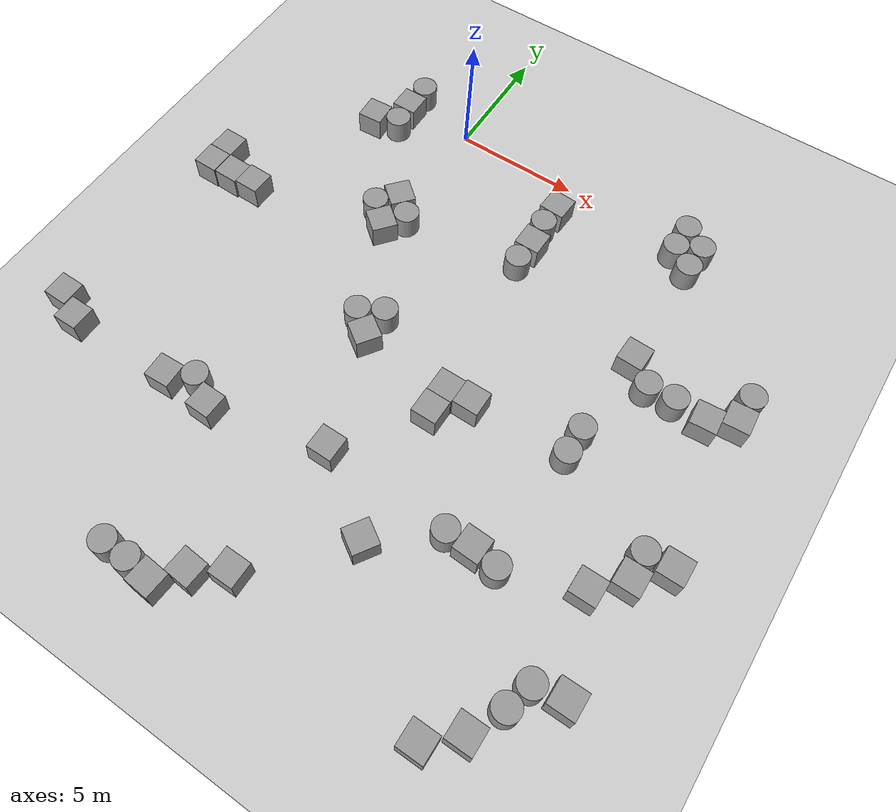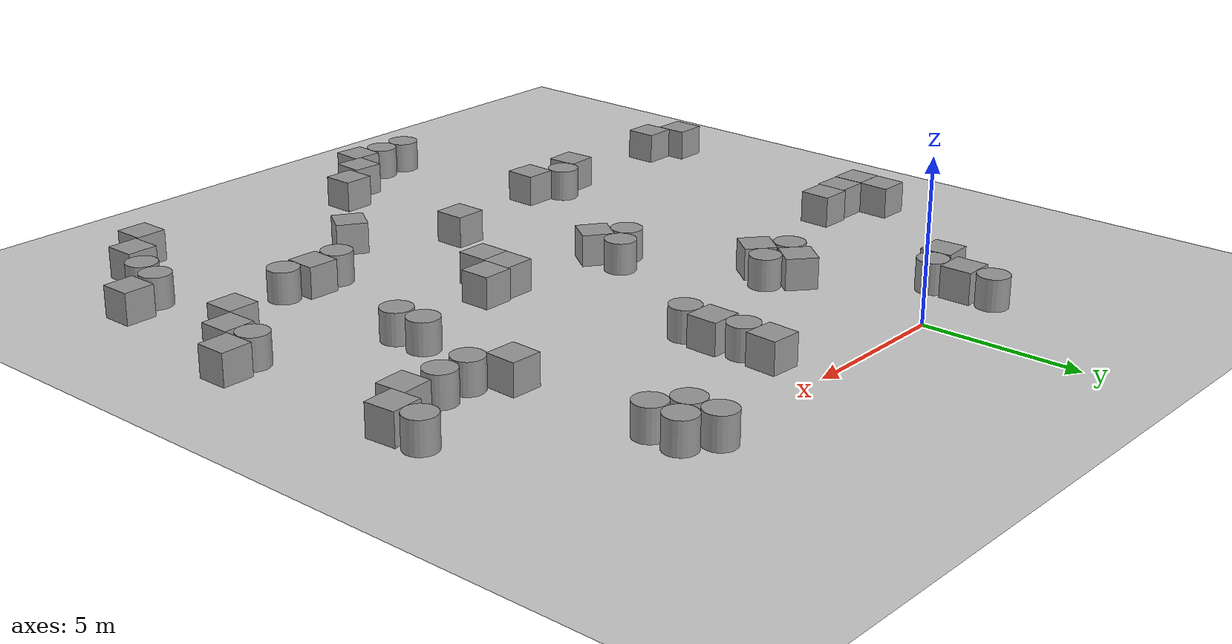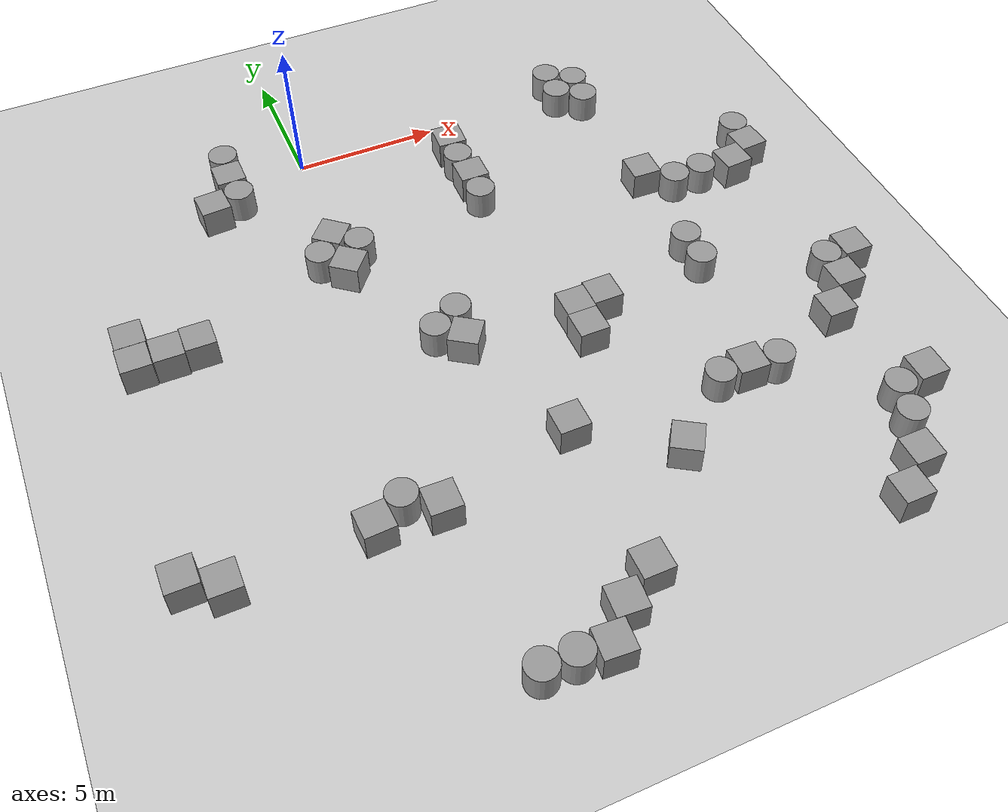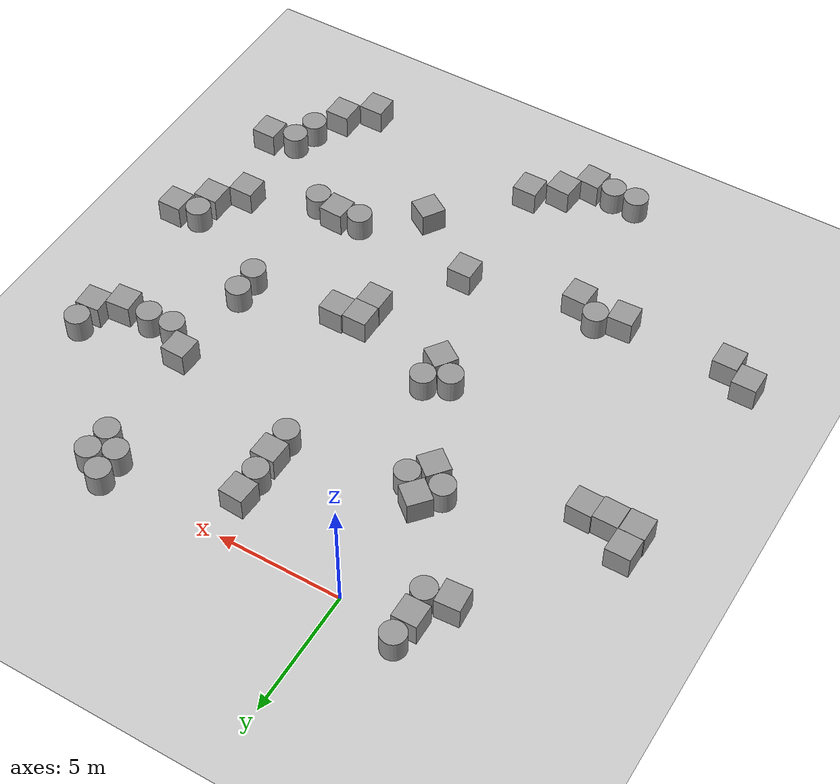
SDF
<sdf version="1.6">
 <world name="default">
  <model name="ground_plane">
   <static>1</static>
   <link name="link">
    <collision name="collision">
     <geometry><plane><normal>0 0 1</normal><size>100 100</size></plane></geometry>
     <surface><friction><ode><mu>100</mu><mu2>50</mu2></ode></friction></surface>
    </collision>
    <visual name="visual">
     <cast_shadows>0</cast_shadows>
     <geometry><plane><normal>0 0 1</normal><size>100 100</size></plane></geometry>
     <material>
      <script><uri>file://media/materials/scripts/gazebo.material</uri><name>Gazebo/Grey</name></script>
     </material>
    </visual>
   </link>
  </model>
  <model name="unit_box_5">
   <pose>-6.52677 -7.31553 0.5 0 0 -0.01529</pose>
   <link name="link">
    <inertial>
     <mass>1</mass>
     <inertia>
      <ixx>0.166667</ixx>
      <ixy>0</ixy>
      <ixz>0</ixz>
      <iyy>0.166667</iyy>
      <iyz>0</iyz>
      <izz>0.166667</izz>
     </inertia>
    </inertial>
    <collision name="collision"><geometry><box><size>1 1 1</size></box></geometry></collision>
    <visual name="visual">
     <geometry><box><size>1 1 1</size></box></geometry>
     <material>
      <script><name>Gazebo/Grey</name><uri>file://media/materials/scripts/gazebo.material</uri></script>
     </material>
    </visual>
   </link>
  </model>
  <model name="unit_cylinder_0">
   <pose>10.7483 -0.233952 0.499942 0 -0 0.018874</pose>
   <link name="link">
    <inertial>
     <mass>1</mass>
     <inertia><ixx>0.145833</ixx><ixy>0</ixy><ixz>0</ixz><iyy>0.145833</iyy><iyz>0</iyz><izz>0.125</izz></inertia>
    </inertial>
    <collision name="collision">
     <geometry><cylinder><radius>0.5</radius><length>1</length></cylinder></geometry>
    </collision>
    <visual name="visual">
     <geometry><cylinder><radius>0.5</radius><length>1</length></cylinder></geometry>
     <material>
      <script><name>Gazebo/Grey</name><uri>file://media/materials/scripts/gazebo.material</uri></script>
     </material>
    </visual>
   </link>
  </model>
  <model name="unit_cylinder_1">
   <pose>10.5673 -10.4506 0.499942 0 0 -0.000248</pose>
   <link name="link">
    <inertial>
     <mass>1</mass>
     <inertia><ixx>0.145833</ixx><ixy>0</ixy><ixz>0</ixz><iyy>0.145833</iyy><iyz>0</iyz><izz>0.125</izz></inertia>
    </inertial>
    <collision name="collision">
     <geometry><cylinder><radius>0.5</radius><length>1</length></cylinder></geometry>
    </collision>
    <visual name="visual">
     <geometry><cylinder><radius>0.5</radius><length>1</length></cylinder></geometry>
     <material>
      <script><name>Gazebo/Grey</name><uri>file://media/materials/scripts/gazebo.material</uri></script>
     </material>
    </visual>
   </link>
  </model>
  <model name="unit_cylinder_2">
   <pose>10.5614 -9.39908 0.499942 0 0 -0.000915</pose>
   <link name="link">
    <inertial>
     <mass>1</mass>
     <inertia><ixx>0.145833</ixx><ixy>0</ixy><ixz>0</ixz><iyy>0.145833</iyy><iyz>0</iyz><izz>0.125</izz></inertia>
    </inertial>
    <collision name="collision">
     <geometry><cylinder><radius>0.5</radius><length>1</length></cylinder></geometry>
    </collision>
    <visual name="visual">
     <geometry><cylinder><radius>0.5</radius><length>1</length></cylinder></geometry>
     <material>
      <script><name>Gazebo/Grey</name><uri>file://media/materials/scripts/gazebo.material</uri></script>
     </material>
    </visual>
   </link>
  </model>
  <model name="unit_cylinder_3">
   <pose>10.6757 -1.26585 0.499942 0 -0 0.000199</pose>
   <link name="link">
    <inertial>
     <mass>1</mass>
     <inertia><ixx>0.145833</ixx><ixy>0</ixy><ixz>0</ixz><iyy>0.145833</iyy><iyz>0</iyz><izz>0.125</izz></inertia>
    </inertial>
    <collision name="collision">
     <geometry><cylinder><radius>0.5</radius><length>1</length></cylinder></geometry>
    </collision>
    <visual name="visual">
     <geometry><cylinder><radius>0.5</radius><length>1</length></cylinder></geometry>
     <material>
      <script><name>Gazebo/Grey</name><uri>file://media/materials/scripts/gazebo.material</uri></script>
     </material>
    </visual>
   </link>
  </model>
  <model name="unit_cylinder_6">
   <pose>-2.57686 0.723564 0.499942 0 0 -0.000453</pose>
   <link name="link">
    <inertial>
     <mass>1</mass>
     <inertia><ixx>0.145833</ixx><ixy>0</ixy><ixz>0</ixz><iyy>0.145833</iyy><iyz>0</iyz><izz>0.125</izz></inertia>
    </inertial>
    <collision name="collision">
     <geometry><cylinder><radius>0.5</radius><length>1</length></cylinder></geometry>
    </collision>
    <visual name="visual">
     <geometry><cylinder><radius>0.5</radius><length>1</length></cylinder></geometry>
     <material>
      <script><name>Gazebo/Grey</name><uri>file://media/materials/scripts/gazebo.material</uri></script>
     </material>
    </visual>
   </link>
  </model>
  <model name="unit_cylinder_7">
   <pose>1.38178 -9.82712 0.499942 0 0 -0.019752</pose>
   <link name="link">
    <inertial>
     <mass>1</mass>
     <inertia><ixx>0.145833</ixx><ixy>0</ixy><ixz>0</ixz><iyy>0.145833</iyy><iyz>0</iyz><izz>0.125</izz></inertia>
    </inertial>
    <collision name="collision">
     <geometry><cylinder><radius>0.5</radius><length>1</length></cylinder></geometry>
    </collision>
    <visual name="visual">
     <geometry><cylinder><radius>0.5</radius><length>1</length></cylinder></geometry>
     <material>
      <script><name>Gazebo/Grey</name><uri>file://media/materials/scripts/gazebo.material</uri></script>
     </material>
    </visual>
   </link>
  </model>
  <model name="unit_box_10">
   <pose>6.83774 -10.6024 0.5 0 0 -2.4e-05</pose>
   <link name="link">
    <inertial>
     <mass>1</mass>
     <inertia>
      <ixx>0.166667</ixx>
      <ixy>0</ixy>
      <ixz>0</ixz>
      <iyy>0.166667</iyy>
      <iyz>0</iyz>
      <izz>0.166667</izz>
     </inertia>
    </inertial>
    <collision name="collision"><geometry><box><size>1 1 1</size></box></geometry></collision>
    <visual name="visual">
     <geometry><box><size>1 1 1</size></box></geometry>
     <material>
      <script><name>Gazebo/Grey</name><uri>file://media/materials/scripts/gazebo.material</uri></script>
     </material>
    </visual>
   </link>
  </model>
  <model name="unit_box_11">
   <pose>5.82225 -11.6823 0.5 0 0 -3.2e-05</pose>
   <link name="link">
    <inertial>
     <mass>1</mass>
     <inertia>
      <ixx>0.166667</ixx>
      <ixy>0</ixy>
      <ixz>0</ixz>
      <iyy>0.166667</iyy>
      <iyz>0</iyz>
      <izz>0.166667</izz>
     </inertia>
    </inertial>
    <collision name="collision"><geometry><box><size>1 1 1</size></box></geometry></collision>
    <visual name="visual">
     <geometry><box><size>1 1 1</size></box></geometry>
     <material>
      <script><name>Gazebo/Grey</name><uri>file://media/materials/scripts/gazebo.material</uri></script>
     </material>
    </visual>
   </link>
  </model>
  <model name="unit_box_12">
   <pose>5.15723 -1.54455 0.5 0 0 -0.056775</pose>
   <link name="link">
    <inertial>
     <mass>1</mass>
     <inertia>
      <ixx>0.166667</ixx>
      <ixy>0</ixy>
      <ixz>0</ixz>
      <iyy>0.166667</iyy>
      <iyz>0</iyz>
      <izz>0.166667</izz>
     </inertia>
    </inertial>
    <collision name="collision"><geometry><box><size>1 1 1</size></box></geometry></collision>
    <visual name="visual">
     <geometry><box><size>1 1 1</size></box></geometry>
     <material>
      <script><name>Gazebo/Grey</name><uri>file://media/materials/scripts/gazebo.material</uri></script>
     </material>
    </visual>
   </link>
  </model>
  <model name="unit_cylinder_8_1">
   <pose>5.09818 -2.54286 0.499942 0 0 -0.000545</pose>
   <link name="link">
    <inertial>
     <mass>1</mass>
     <inertia><ixx>0.145833</ixx><ixy>0</ixy><ixz>0</ixz><iyy>0.145833</iyy><iyz>0</iyz><izz>0.125</izz></inertia>
    </inertial>
    <collision name="collision">
     <geometry><cylinder><radius>0.5</radius><length>1</length></cylinder></geometry>
    </collision>
    <visual name="visual">
     <geometry><cylinder><radius>0.5</radius><length>1</length></cylinder></geometry>
     <material>
      <script><name>Gazebo/Grey</name><uri>file://media/materials/scripts/gazebo.material</uri></script>
     </material>
    </visual>
   </link>
  </model>
  <model name="unit_box_13">
   <pose>5.186 -3.54449 0.5 0 0 -0.016738</pose>
   <link name="link">
    <inertial>
     <mass>1</mass>
     <inertia>
      <ixx>0.166667</ixx>
      <ixy>0</ixy>
      <ixz>0</ixz>
      <iyy>0.166667</iyy>
      <iyz>0</iyz>
      <izz>0.166667</izz>
     </inertia>
    </inertial>
    <collision name="collision"><geometry><box><size>1 1 1</size></box></geometry></collision>
    <visual name="visual">
     <geometry><box><size>1 1 1</size></box></geometry>
     <material>
      <script><name>Gazebo/Grey</name><uri>file://media/materials/scripts/gazebo.material</uri></script>
     </material>
    </visual>
   </link>
  </model>
  <model name="unit_cylinder_8_2">
   <pose>5.13166 -4.54376 0.499942 0 0 -0.00034</pose>
   <link name="link">
    <inertial>
     <mass>1</mass>
     <inertia><ixx>0.145833</ixx><ixy>0</ixy><ixz>0</ixz><iyy>0.145833</iyy><iyz>0</iyz><izz>0.125</izz></inertia>
    </inertial>
    <collision name="collision">
     <geometry><cylinder><radius>0.5</radius><length>1</length></cylinder></geometry>
    </collision>
    <visual name="visual">
     <geometry><cylinder><radius>0.5</radius><length>1</length></cylinder></geometry>
     <material>
      <script><name>Gazebo/Grey</name><uri>file://media/materials/scripts/gazebo.material</uri></script>
     </material>
    </visual>
   </link>
  </model>
  <model name="unit_box_14">
   <pose>5.83773 -10.6822 0.5 0 0 -2.8e-05</pose>
   <link name="link">
    <inertial>
     <mass>1</mass>
     <inertia>
      <ixx>0.166667</ixx>
      <ixy>0</ixy>
      <ixz>0</ixz>
      <iyy>0.166667</iyy>
      <iyz>0</iyz>
      <izz>0.166667</izz>
     </inertia>
    </inertial>
    <collision name="collision"><geometry><box><size>1 1 1</size></box></geometry></collision>
    <visual name="visual">
     <geometry><box><size>1 1 1</size></box></geometry>
     <material>
      <script><name>Gazebo/Grey</name><uri>file://media/materials/scripts/gazebo.material</uri></script>
     </material>
    </visual>
   </link>
  </model>
  <model name="unit_cylinder_14">
   <pose>14.9355 -5.05121 0.499942 0 -0 0.002226</pose>
   <link name="link">
    <inertial>
     <mass>1</mass>
     <inertia><ixx>0.145833</ixx><ixy>0</ixy><ixz>0</ixz><iyy>0.145833</iyy><iyz>0</iyz><izz>0.125</izz></inertia>
    </inertial>
    <collision name="collision">
     <geometry><cylinder><radius>0.5</radius><length>1</length></cylinder></geometry>
    </collision>
    <visual name="visual">
     <geometry><cylinder><radius>0.5</radius><length>1</length></cylinder></geometry>
     <material>
      <script><name>Gazebo/Grey</name><uri>file://media/materials/scripts/gazebo.material</uri></script>
     </material>
    </visual>
   </link>
  </model>
  <model name="unit_box_25">
   <pose>13.9445 -6.67344 0.5 0 -0 0.075178</pose>
   <link name="link">
    <inertial>
     <mass>1</mass>
     <inertia>
      <ixx>0.166667</ixx>
      <ixy>0</ixy>
      <ixz>0</ixz>
      <iyy>0.166667</iyy>
      <iyz>0</iyz>
      <izz>0.166667</izz>
     </inertia>
    </inertial>
    <collision name="collision"><geometry><box><size>1 1 1</size></box></geometry></collision>
    <visual name="visual">
     <geometry><box><size>1 1 1</size></box></geometry>
     <material>
      <script><name>Gazebo/Grey</name><uri>file://media/materials/scripts/gazebo.material</uri></script>
     </material>
    </visual>
   </link>
  </model>
  <model name="unit_box_26">
   <pose>3.65039 -14.8069 0.5 0 -0 0</pose>
   <link name="link">
    <inertial>
     <mass>1</mass>
     <inertia>
      <ixx>0.166667</ixx>
      <ixy>0</ixy>
      <ixz>0</ixz>
      <iyy>0.166667</iyy>
      <iyz>0</iyz>
      <izz>0.166667</izz>
     </inertia>
    </inertial>
    <collision name="collision"><geometry><box><size>1 1 1</size></box></geometry></collision>
    <visual name="visual">
     <geometry><box><size>1 1 1</size></box></geometry>
     <material>
      <script><name>Gazebo/Grey</name><uri>file://media/materials/scripts/gazebo.material</uri></script>
     </material>
    </visual>
   </link>
  </model>
  <model name="unit_cylinder_15">
   <pose>-1.77956 -15.2792 0.499942 0 0 -0.00561</pose>
   <link name="link">
    <inertial>
     <mass>1</mass>
     <inertia><ixx>0.145833</ixx><ixy>0</ixy><ixz>0</ixz><iyy>0.145833</iyy><iyz>0</iyz><izz>0.125</izz></inertia>
    </inertial>
    <collision name="collision">
     <geometry><cylinder><radius>0.5</radius><length>1</length></cylinder></geometry>
    </collision>
    <visual name="visual">
     <geometry><cylinder><radius>0.5</radius><length>1</length></cylinder></geometry>
     <material>
      <script><name>Gazebo/Grey</name><uri>file://media/materials/scripts/gazebo.material</uri></script>
     </material>
    </visual>
   </link>
  </model>
  <model name="unit_box_27">
   <pose>-7.07555 -15.8653 0.5 0 -0 0</pose>
   <link name="link">
    <inertial>
     <mass>1</mass>
     <inertia>
      <ixx>0.166667</ixx>
      <ixy>0</ixy>
      <ixz>0</ixz>
      <iyy>0.166667</iyy>
      <iyz>0</iyz>
      <izz>0.166667</izz>
     </inertia>
    </inertial>
    <collision name="collision"><geometry><box><size>1 1 1</size></box></geometry></collision>
    <visual name="visual">
     <geometry><box><size>1 1 1</size></box></geometry>
     <material>
      <script><name>Gazebo/Grey</name><uri>file://media/materials/scripts/gazebo.material</uri></script>
     </material>
    </visual>
   </link>
  </model>
  <model name="unit_box_35">
   <pose>14.9026 -6.05619 0.5 0 -0 0.071763</pose>
   <link name="link">
    <inertial>
     <mass>1</mass>
     <inertia>
      <ixx>0.166667</ixx>
      <ixy>0</ixy>
      <ixz>0</ixz>
      <iyy>0.166667</iyy>
      <iyz>0</iyz>
      <izz>0.166667</izz>
     </inertia>
    </inertial>
    <collision name="collision"><geometry><box><size>1 1 1</size></box></geometry></collision>
    <visual name="visual">
     <geometry><box><size>1 1 1</size></box></geometry>
     <material>
      <script><name>Gazebo/Grey</name><uri>file://media/materials/scripts/gazebo.material</uri></script>
     </material>
    </visual>
   </link>
  </model>
  <model name="unit_box_24_2">
   <pose>-8.1048 -15.29 0.5 0 0 -6e-06</pose>
   <link name="link">
    <inertial>
     <mass>1</mass>
     <inertia>
      <ixx>0.166667</ixx>
      <ixy>0</ixy>
      <ixz>0</ixz>
      <iyy>0.166667</iyy>
      <iyz>0</iyz>
      <izz>0.166667</izz>
     </inertia>
    </inertial>
    <collision name="collision"><geometry><box><size>1 1 1</size></box></geometry></collision>
    <visual name="visual">
     <geometry><box><size>1 1 1</size></box></geometry>
     <material>
      <script><name>Gazebo/Grey</name><uri>file://media/materials/scripts/gazebo.material</uri></script>
     </material>
    </visual>
   </link>
  </model>
  <model name="unit_cylinder_34">
   <pose>-2.55708 -1.29983 0.499942 0 0 -0.031644</pose>
   <link name="link">
    <inertial>
     <mass>1</mass>
     <inertia><ixx>0.145833</ixx><ixy>0</ixy><ixz>0</ixz><iyy>0.145833</iyy><iyz>0</iyz><izz>0.125</izz></inertia>
    </inertial>
    <collision name="collision">
     <geometry><cylinder><radius>0.5</radius><length>1</length></cylinder></geometry>
    </collision>
    <visual name="visual">
     <geometry><cylinder><radius>0.5</radius><length>1</length></cylinder></geometry>
     <material>
      <script><name>Gazebo/Grey</name><uri>file://media/materials/scripts/gazebo.material</uri></script>
     </material>
    </visual>
   </link>
  </model>
  <model name="unit_cylinder_40">
   <pose>8.62202 -15.0706 0.499942 0 0 -0.007938</pose>
   <link name="link">
    <inertial>
     <mass>1</mass>
     <inertia><ixx>0.145833</ixx><ixy>0</ixy><ixz>0</ixz><iyy>0.145833</iyy><iyz>0</iyz><izz>0.125</izz></inertia>
    </inertial>
    <collision name="collision">
     <geometry><cylinder><radius>0.5</radius><length>1</length></cylinder></geometry>
    </collision>
    <visual name="visual">
     <geometry><cylinder><radius>0.5</radius><length>1</length></cylinder></geometry>
     <material>
      <script><name>Gazebo/Grey</name><uri>file://media/materials/scripts/gazebo.material</uri></script>
     </material>
    </visual>
   </link>
  </model>
  <model name="unit_box_45">
   <pose>9.62543 -15.0067 0.5 0 0 -0.03885</pose>
   <link name="link">
    <inertial>
     <mass>1</mass>
     <inertia>
      <ixx>0.166667</ixx>
      <ixy>0</ixy>
      <ixz>0</ixz>
      <iyy>0.166667</iyy>
      <iyz>0</iyz>
      <izz>0.166667</izz>
     </inertia>
    </inertial>
    <collision name="collision"><geometry><box><size>1 1 1</size></box></geometry></collision>
    <visual name="visual">
     <geometry><box><size>1 1 1</size></box></geometry>
     <material>
      <script><name>Gazebo/Grey</name><uri>file://media/materials/scripts/gazebo.material</uri></script>
     </material>
    </visual>
   </link>
  </model>
  <model name="unit_cylinder_41">
   <pose>10.6198 -15.1733 0.499942 0 -0 0.015652</pose>
   <link name="link">
    <inertial>
     <mass>1</mass>
     <inertia><ixx>0.145833</ixx><ixy>0</ixy><ixz>0</ixz><iyy>0.145833</iyy><iyz>0</iyz><izz>0.125</izz></inertia>
    </inertial>
    <collision name="collision">
     <geometry><cylinder><radius>0.5</radius><length>1</length></cylinder></geometry>
    </collision>
    <visual name="visual">
     <geometry><cylinder><radius>0.5</radius><length>1</length></cylinder></geometry>
     <material>
      <script><name>Gazebo/Grey</name><uri>file://media/materials/scripts/gazebo.material</uri></script>
     </material>
    </visual>
   </link>
  </model>
  <model name="unit_box_36_0">
   <pose>15.3504 -12.0188 0.5 0 -0 0</pose>
   <link name="link">
    <inertial>
     <mass>1</mass>
     <inertia>
      <ixx>0.166667</ixx>
      <ixy>0</ixy>
      <ixz>0</ixz>
      <iyy>0.166667</iyy>
      <iyz>0</iyz>
      <izz>0.166667</izz>
     </inertia>
    </inertial>
    <collision name="collision"><geometry><box><size>1 1 1</size></box></geometry></collision>
    <visual name="visual">
     <geometry><box><size>1 1 1</size></box></geometry>
     <material>
      <script><name>Gazebo/Grey</name><uri>file://media/materials/scripts/gazebo.material</uri></script>
     </material>
    </visual>
   </link>
  </model>
  <model name="unit_cylinder_21">
   <pose>2.27126 -9.3211 0.499942 0 -0 0.010871</pose>
   <link name="link">
    <inertial>
     <mass>1</mass>
     <inertia><ixx>0.145833</ixx><ixy>0</ixy><ixz>0</ixz><iyy>0.145833</iyy><iyz>0</iyz><izz>0.125</izz></inertia>
    </inertial>
    <collision name="collision">
     <geometry><cylinder><radius>0.5</radius><length>1</length></cylinder></geometry>
    </collision>
    <visual name="visual">
     <geometry><cylinder><radius>0.5</radius><length>1</length></cylinder></geometry>
     <material>
      <script><name>Gazebo/Grey</name><uri>file://media/materials/scripts/gazebo.material</uri></script>
     </material>
    </visual>
   </link>
  </model>
  <model name="unit_box_0_1">
   <pose>-5.52497 -7.25658 0.5 0 0 -0.013465</pose>
   <link name="link">
    <inertial>
     <mass>1</mass>
     <inertia>
      <ixx>0.166667</ixx>
      <ixy>0</ixy>
      <ixz>0</ixz>
      <iyy>0.166667</iyy>
      <iyz>0</iyz>
      <izz>0.166667</izz>
     </inertia>
    </inertial>
    <collision name="collision"><geometry><box><size>1 1 1</size></box></geometry></collision>
    <visual name="visual">
     <geometry><box><size>1 1 1</size></box></geometry>
     <material>
      <script><name>Gazebo/Grey</name><uri>file://media/materials/scripts/gazebo.material</uri></script>
     </material>
    </visual>
   </link>
  </model>
  <model name="unit_box_0_2">
   <pose>-7.54927 -7.33375 0.5 0 0 -0.003969</pose>
   <link name="link">
    <inertial>
     <mass>1</mass>
     <inertia>
      <ixx>0.166667</ixx>
      <ixy>0</ixy>
      <ixz>0</ixz>
      <iyy>0.166667</iyy>
      <iyz>0</iyz>
      <izz>0.166667</izz>
     </inertia>
    </inertial>
    <collision name="collision"><geometry><box><size>1 1 1</size></box></geometry></collision>
    <visual name="visual">
     <geometry><box><size>1 1 1</size></box></geometry>
     <material>
      <script><name>Gazebo/Grey</name><uri>file://media/materials/scripts/gazebo.material</uri></script>
     </material>
    </visual>
   </link>
  </model>
  <model name="unit_box_0_3">
   <pose>-7.51431 -6.33074 0.5 0 0 -0.010331</pose>
   <link name="link">
    <inertial>
     <mass>1</mass>
     <inertia>
      <ixx>0.166667</ixx>
      <ixy>0</ixy>
      <ixz>0</ixz>
      <iyy>0.166667</iyy>
      <iyz>0</iyz>
      <izz>0.166667</izz>
     </inertia>
    </inertial>
    <collision name="collision"><geometry><box><size>1 1 1</size></box></geometry></collision>
    <visual name="visual">
     <geometry><box><size>1 1 1</size></box></geometry>
     <material>
      <script><name>Gazebo/Grey</name><uri>file://media/materials/scripts/gazebo.material</uri></script>
     </material>
    </visual>
   </link>
  </model>
  <model name="unit_box_6">
   <pose>6.49356 -16.8377 0.5 0 -0 1</pose>
   <link name="link">
    <inertial>
     <mass>1</mass>
     <inertia>
      <ixx>0.166667</ixx>
      <ixy>0</ixy>
      <ixz>0</ixz>
      <iyy>0.166667</iyy>
      <iyz>0</iyz>
      <izz>0.166667</izz>
     </inertia>
    </inertial>
    <collision name="collision"><geometry><box><size>1 1 1</size></box></geometry></collision>
    <visual name="visual">
     <geometry><box><size>1 1 1</size></box></geometry>
     <material>
      <script><name>Gazebo/Grey</name><uri>file://media/materials/scripts/gazebo.material</uri></script>
     </material>
    </visual>
   </link>
  </model>
  <model name="unit_box_18">
   <pose>-0.174864 -5.99582 0.5 0 -0 0.888889</pose>
   <link name="link">
    <inertial>
     <mass>1</mass>
     <inertia>
      <ixx>0.166667</ixx>
      <ixy>0</ixy>
      <ixz>0</ixz>
      <iyy>0.166667</iyy>
      <iyz>0</iyz>
      <izz>0.166667</izz>
     </inertia>
    </inertial>
    <collision name="collision"><geometry><box><size>1 1 1</size></box></geometry></collision>
    <visual name="visual">
     <geometry><box><size>1 1 1</size></box></geometry>
     <material>
      <script><name>Gazebo/Grey</name><uri>file://media/materials/scripts/gazebo.material</uri></script>
     </material>
    </visual>
   </link>
  </model>
  <model name="unit_cylinder_5_0">
   <pose>0.466694 -5.21374 0.499942 0 0 -0.04434</pose>
   <link name="link">
    <inertial>
     <mass>1</mass>
     <inertia><ixx>0.145833</ixx><ixy>0</ixy><ixz>0</ixz><iyy>0.145833</iyy><iyz>0</iyz><izz>0.125</izz></inertia>
    </inertial>
    <collision name="collision">
     <geometry><cylinder><radius>0.5</radius><length>1</length></cylinder></geometry>
    </collision>
    <visual name="visual">
     <geometry><cylinder><radius>0.5</radius><length>1</length></cylinder></geometry>
     <material>
      <script><name>Gazebo/Grey</name><uri>file://media/materials/scripts/gazebo.material</uri></script>
     </material>
    </visual>
   </link>
  </model>
  <model name="unit_cylinder_5_1">
   <pose>-0.924336 -5.31924 0.499942 0 -0 0.036522</pose>
   <link name="link">
    <inertial>
     <mass>1</mass>
     <inertia><ixx>0.145833</ixx><ixy>0</ixy><ixz>0</ixz><iyy>0.145833</iyy><iyz>0</iyz><izz>0.125</izz></inertia>
    </inertial>
    <collision name="collision">
     <geometry><cylinder><radius>0.5</radius><length>1</length></cylinder></geometry>
    </collision>
    <visual name="visual">
     <geometry><cylinder><radius>0.5</radius><length>1</length></cylinder></geometry>
     <material>
      <script><name>Gazebo/Grey</name><uri>file://media/materials/scripts/gazebo.material</uri></script>
     </material>
    </visual>
   </link>
  </model>
  <model name="unit_box_18_clone">
   <pose>-0.283506 -4.5515 0.5 0 -0 0.870361</pose>
   <link name="link">
    <inertial>
     <mass>1</mass>
     <inertia>
      <ixx>0.166667</ixx>
      <ixy>0</ixy>
      <ixz>0</ixz>
      <iyy>0.166667</iyy>
      <iyz>0</iyz>
      <izz>0.166667</izz>
     </inertia>
    </inertial>
    <collision name="collision"><geometry><box><size>1 1 1</size></box></geometry></collision>
    <visual name="visual">
     <geometry><box><size>1 1 1</size></box></geometry>
     <material>
      <script><name>Gazebo/Grey</name><uri>file://media/materials/scripts/gazebo.material</uri></script>
     </material>
    </visual>
   </link>
  </model>
  <model name="unit_box_38">
   <pose>-2.75738 -15.7936 0.5 0 -0 0.045274</pose>
   <link name="link">
    <inertial>
     <mass>1</mass>
     <inertia>
      <ixx>0.166667</ixx>
      <ixy>0</ixy>
      <ixz>0</ixz>
      <iyy>0.166667</iyy>
      <iyz>0</iyz>
      <izz>0.166667</izz>
     </inertia>
    </inertial>
    <collision name="collision"><geometry><box><size>1 1 1</size></box></geometry></collision>
    <visual name="visual">
     <geometry><box><size>1 1 1</size></box></geometry>
     <material>
      <script><name>Gazebo/Grey</name><uri>file://media/materials/scripts/gazebo.material</uri></script>
     </material>
    </visual>
   </link>
  </model>
  <model name="unit_box_39">
   <pose>-0.800249 -15.8834 0.5 0 0 -0.025356</pose>
   <link name="link">
    <inertial>
     <mass>1</mass>
     <inertia>
      <ixx>0.166667</ixx>
      <ixy>0</ixy>
      <ixz>0</ixz>
      <iyy>0.166667</iyy>
      <iyz>0</iyz>
      <izz>0.166667</izz>
     </inertia>
    </inertial>
    <collision name="collision"><geometry><box><size>1 1 1</size></box></geometry></collision>
    <visual name="visual">
     <geometry><box><size>1 1 1</size></box></geometry>
     <material>
      <script><name>Gazebo/Grey</name><uri>file://media/materials/scripts/gazebo.material</uri></script>
     </material>
    </visual>
   </link>
  </model>
  <model name="unit_box_18_clone_clone_0_clone_2">
   <pose>2.16072 -10.4585 0.5 0 -0 0.962576</pose>
   <link name="link">
    <inertial>
     <mass>1</mass>
     <inertia>
      <ixx>0.166667</ixx>
      <ixy>0</ixy>
      <ixz>0</ixz>
      <iyy>0.166667</iyy>
      <iyz>0</iyz>
      <izz>0.166667</izz>
     </inertia>
    </inertial>
    <collision name="collision"><geometry><box><size>1 1 1</size></box></geometry></collision>
    <visual name="visual">
     <geometry><box><size>1 1 1</size></box></geometry>
     <material>
      <script><name>Gazebo/Grey</name><uri>file://media/materials/scripts/gazebo.material</uri></script>
     </material>
    </visual>
   </link>
  </model>
  <model name="unit_cylinder_60">
   <pose>-0.346072 -21.5615 0.499942 0 0 -0.000149</pose>
   <link name="link">
    <inertial>
     <mass>1</mass>
     <inertia><ixx>0.145833</ixx><ixy>0</ixy><ixz>0</ixz><iyy>0.145833</iyy><iyz>0</iyz><izz>0.125</izz></inertia>
    </inertial>
    <collision name="collision">
     <geometry><cylinder><radius>0.5</radius><length>1</length></cylinder></geometry>
    </collision>
    <visual name="visual">
     <geometry><cylinder><radius>0.5</radius><length>1</length></cylinder></geometry>
     <material>
      <script><name>Gazebo/Grey</name><uri>file://media/materials/scripts/gazebo.material</uri></script>
     </material>
    </visual>
   </link>
  </model>
  <model name="unit_cylinder_61">
   <pose>0.653864 -21.5729 0.499942 0 -0 0.001945</pose>
   <link name="link">
    <inertial>
     <mass>1</mass>
     <inertia><ixx>0.145833</ixx><ixy>0</ixy><ixz>0</ixz><iyy>0.145833</iyy><iyz>0</iyz><izz>0.125</izz></inertia>
    </inertial>
    <collision name="collision">
     <geometry><cylinder><radius>0.5</radius><length>1</length></cylinder></geometry>
    </collision>
    <visual name="visual">
     <geometry><cylinder><radius>0.5</radius><length>1</length></cylinder></geometry>
     <material>
      <script><name>Gazebo/Grey</name><uri>file://media/materials/scripts/gazebo.material</uri></script>
     </material>
    </visual>
   </link>
  </model>
  <model name="unit_box_42">
   <pose>1.64804 -21.7007 0.5 0 0 -0.072286</pose>
   <link name="link">
    <inertial>
     <mass>1</mass>
     <inertia>
      <ixx>0.166667</ixx>
      <ixy>0</ixy>
      <ixz>0</ixz>
      <iyy>0.166667</iyy>
      <iyz>0</iyz>
      <izz>0.166667</izz>
     </inertia>
    </inertial>
    <collision name="collision"><geometry><box><size>1 1 1</size></box></geometry></collision>
    <visual name="visual">
     <geometry><box><size>1 1 1</size></box></geometry>
     <material>
      <script><name>Gazebo/Grey</name><uri>file://media/materials/scripts/gazebo.material</uri></script>
     </material>
    </visual>
   </link>
  </model>
  <model name="unit_box_46">
   <pose>2.48286 -20.7545 0.5 0 0 -0.06951</pose>
   <link name="link">
    <inertial>
     <mass>1</mass>
     <inertia>
      <ixx>0.166667</ixx>
      <ixy>0</ixy>
      <ixz>0</ixz>
      <iyy>0.166667</iyy>
      <iyz>0</iyz>
      <izz>0.166667</izz>
     </inertia>
    </inertial>
    <collision name="collision"><geometry><box><size>1 1 1</size></box></geometry></collision>
    <visual name="visual">
     <geometry><box><size>1 1 1</size></box></geometry>
     <material>
      <script><name>Gazebo/Grey</name><uri>file://media/materials/scripts/gazebo.material</uri></script>
     </material>
    </visual>
   </link>
  </model>
  <model name="unit_box_47">
   <pose>3.63048 -20.0036 0.5 0 -0 0</pose>
   <link name="link">
    <inertial>
     <mass>1</mass>
     <inertia>
      <ixx>0.166667</ixx>
      <ixy>0</ixy>
      <ixz>0</ixz>
      <iyy>0.166667</iyy>
      <iyz>0</iyz>
      <izz>0.166667</izz>
     </inertia>
    </inertial>
    <collision name="collision"><geometry><box><size>1 1 1</size></box></geometry></collision>
    <visual name="visual">
     <geometry><box><size>1 1 1</size></box></geometry>
     <material>
      <script><name>Gazebo/Grey</name><uri>file://media/materials/scripts/gazebo.material</uri></script>
     </material>
    </visual>
   </link>
  </model>
  <model name="unit_cylinder_62">
   <pose>13.0671 -18.6482 0.499942 0 -0 0</pose>
   <link name="link">
    <inertial>
     <mass>1</mass>
     <inertia><ixx>0.145833</ixx><ixy>0</ixy><ixz>0</ixz><iyy>0.145833</iyy><iyz>0</iyz><izz>0.125</izz></inertia>
    </inertial>
    <collision name="collision">
     <geometry><cylinder><radius>0.5</radius><length>1</length></cylinder></geometry>
    </collision>
    <visual name="visual">
     <geometry><cylinder><radius>0.5</radius><length>1</length></cylinder></geometry>
     <material>
      <script><name>Gazebo/Grey</name><uri>file://media/materials/scripts/gazebo.material</uri></script>
     </material>
    </visual>
   </link>
  </model>
  <model name="unit_cylinder_63">
   <pose>13.3446 -17.6394 0.499942 0 -0 0</pose>
   <link name="link">
    <inertial>
     <mass>1</mass>
     <inertia><ixx>0.145833</ixx><ixy>0</ixy><ixz>0</ixz><iyy>0.145833</iyy><iyz>0</iyz><izz>0.125</izz></inertia>
    </inertial>
    <collision name="collision">
     <geometry><cylinder><radius>0.5</radius><length>1</length></cylinder></geometry>
    </collision>
    <visual name="visual">
     <geometry><cylinder><radius>0.5</radius><length>1</length></cylinder></geometry>
     <material>
      <script><name>Gazebo/Grey</name><uri>file://media/materials/scripts/gazebo.material</uri></script>
     </material>
    </visual>
   </link>
  </model>
  <model name="unit_box_48">
   <pose>14.4517 -17.412 0.5 0 -0 0</pose>
   <link name="link">
    <inertial>
     <mass>1</mass>
     <inertia>
      <ixx>0.166667</ixx>
      <ixy>0</ixy>
      <ixz>0</ixz>
      <iyy>0.166667</iyy>
      <iyz>0</iyz>
      <izz>0.166667</izz>
     </inertia>
    </inertial>
    <collision name="collision"><geometry><box><size>1 1 1</size></box></geometry></collision>
    <visual name="visual">
     <geometry><box><size>1 1 1</size></box></geometry>
     <material>
      <script><name>Gazebo/Grey</name><uri>file://media/materials/scripts/gazebo.material</uri></script>
     </material>
    </visual>
   </link>
  </model>
  <model name="unit_box_49">
   <pose>12.4577 -19.9115 0.5 0 -0 0</pose>
   <link name="link">
    <inertial>
     <mass>1</mass>
     <inertia>
      <ixx>0.166667</ixx>
      <ixy>0</ixy>
      <ixz>0</ixz>
      <iyy>0.166667</iyy>
      <iyz>0</iyz>
      <izz>0.166667</izz>
     </inertia>
    </inertial>
    <collision name="collision"><geometry><box><size>1 1 1</size></box></geometry></collision>
    <visual name="visual">
     <geometry><box><size>1 1 1</size></box></geometry>
     <material>
      <script><name>Gazebo/Grey</name><uri>file://media/materials/scripts/gazebo.material</uri></script>
     </material>
    </visual>
   </link>
  </model>
  <model name="unit_box_50">
   <pose>11.4062 -20.8841 0.5 0 -0 0</pose>
   <link name="link">
    <inertial>
     <mass>1</mass>
     <inertia>
      <ixx>0.166667</ixx>
      <ixy>0</ixy>
      <ixz>0</ixz>
      <iyy>0.166667</iyy>
      <iyz>0</iyz>
      <izz>0.166667</izz>
     </inertia>
    </inertial>
    <collision name="collision"><geometry><box><size>1 1 1</size></box></geometry></collision>
    <visual name="visual">
     <geometry><box><size>1 1 1</size></box></geometry>
     <material>
      <script><name>Gazebo/Grey</name><uri>file://media/materials/scripts/gazebo.material</uri></script>
     </material>
    </visual>
   </link>
  </model>
  <model name="unit_cylinder_66">
   <pose>12.7125 -6.59271 0.499942 0 -0 0</pose>
   <link name="link">
    <inertial>
     <mass>1</mass>
     <inertia><ixx>0.145833</ixx><ixy>0</ixy><ixz>0</ixz><iyy>0.145833</iyy><iyz>0</iyz><izz>0.125</izz></inertia>
    </inertial>
    <collision name="collision">
     <geometry><cylinder><radius>0.5</radius><length>1</length></cylinder></geometry>
    </collision>
    <visual name="visual">
     <geometry><cylinder><radius>0.5</radius><length>1</length></cylinder></geometry>
     <material>
      <script><name>Gazebo/Grey</name><uri>file://media/materials/scripts/gazebo.material</uri></script>
     </material>
    </visual>
   </link>
  </model>
  <model name="unit_cylinder_67">
   <pose>11.6607 -6.61897 0.499942 0 -0 0.019022</pose>
   <link name="link">
    <inertial>
     <mass>1</mass>
     <inertia><ixx>0.145833</ixx><ixy>0</ixy><ixz>0</ixz><iyy>0.145833</iyy><iyz>0</iyz><izz>0.125</izz></inertia>
    </inertial>
    <collision name="collision">
     <geometry><cylinder><radius>0.5</radius><length>1</length></cylinder></geometry>
    </collision>
    <visual name="visual">
     <geometry><cylinder><radius>0.5</radius><length>1</length></cylinder></geometry>
     <material>
      <script><name>Gazebo/Grey</name><uri>file://media/materials/scripts/gazebo.material</uri></script>
     </material>
    </visual>
   </link>
  </model>
  <model name="unit_box_54">
   <pose>10.7513 -5.84017 0.5 0 0 -0.033192</pose>
   <link name="link">
    <inertial>
     <mass>1</mass>
     <inertia>
      <ixx>0.166667</ixx>
      <ixy>0</ixy>
      <ixz>0</ixz>
      <iyy>0.166667</iyy>
      <iyz>0</iyz>
      <izz>0.166667</izz>
     </inertia>
    </inertial>
    <collision name="collision"><geometry><box><size>1 1 1</size></box></geometry></collision>
    <visual name="visual">
     <geometry><box><size>1 1 1</size></box></geometry>
     <material>
      <script><name>Gazebo/Grey</name><uri>file://media/materials/scripts/gazebo.material</uri></script>
     </material>
    </visual>
   </link>
  </model>
  <model name="unit_cylinder_68">
   <pose>9.88197 0.334301 0.499942 0 0 -0.004342</pose>
   <link name="link">
    <inertial>
     <mass>1</mass>
     <inertia><ixx>0.145833</ixx><ixy>0</ixy><ixz>0</ixz><iyy>0.145833</iyy><iyz>0</iyz><izz>0.125</izz></inertia>
    </inertial>
    <collision name="collision">
     <geometry><cylinder><radius>0.5</radius><length>1</length></cylinder></geometry>
    </collision>
    <visual name="visual">
     <geometry><cylinder><radius>0.5</radius><length>1</length></cylinder></geometry>
     <material>
      <script><name>Gazebo/Grey</name><uri>file://media/materials/scripts/gazebo.material</uri></script>
     </material>
    </visual>
   </link>
  </model>
  <model name="unit_cylinder_69">
   <pose>9.85051 -0.674532 0.499942 0 0 -0.000613</pose>
   <link name="link">
    <inertial>
     <mass>1</mass>
     <inertia><ixx>0.145833</ixx><ixy>0</ixy><ixz>0</ixz><iyy>0.145833</iyy><iyz>0</iyz><izz>0.125</izz></inertia>
    </inertial>
    <collision name="collision">
     <geometry><cylinder><radius>0.5</radius><length>1</length></cylinder></geometry>
    </collision>
    <visual name="visual">
     <geometry><cylinder><radius>0.5</radius><length>1</length></cylinder></geometry>
     <material>
      <script><name>Gazebo/Grey</name><uri>file://media/materials/scripts/gazebo.material</uri></script>
     </material>
    </visual>
   </link>
  </model>
  <model name="unit_box_55">
   <pose>-2.64848 -0.300457 0.5 0 -0 0.007604</pose>
   <link name="link">
    <inertial>
     <mass>1</mass>
     <inertia>
      <ixx>0.166667</ixx>
      <ixy>0</ixy>
      <ixz>0</ixz>
      <iyy>0.166667</iyy>
      <iyz>0</iyz>
      <izz>0.166667</izz>
     </inertia>
    </inertial>
    <collision name="collision"><geometry><box><size>1 1 1</size></box></geometry></collision>
    <visual name="visual">
     <geometry><box><size>1 1 1</size></box></geometry>
     <material>
      <script><name>Gazebo/Grey</name><uri>file://media/materials/scripts/gazebo.material</uri></script>
     </material>
    </visual>
   </link>
  </model>
  <model name="unit_box_56">
   <pose>-3.54167 -1.55597 0.5 0 -0 0.069748</pose>
   <link name="link">
    <inertial>
     <mass>1</mass>
     <inertia>
      <ixx>0.166667</ixx>
      <ixy>0</ixy>
      <ixz>0</ixz>
      <iyy>0.166667</iyy>
      <iyz>0</iyz>
      <izz>0.166667</izz>
     </inertia>
    </inertial>
    <collision name="collision"><geometry><box><size>1 1 1</size></box></geometry></collision>
    <visual name="visual">
     <geometry><box><size>1 1 1</size></box></geometry>
     <material>
      <script><name>Gazebo/Grey</name><uri>file://media/materials/scripts/gazebo.material</uri></script>
     </material>
    </visual>
   </link>
  </model>
  <model name="unit_box_57">
   <pose>14.3593 -13.1028 0.5 0 -0 0.001178</pose>
   <link name="link">
    <inertial>
     <mass>1</mass>
     <inertia>
      <ixx>0.166667</ixx>
      <ixy>0</ixy>
      <ixz>0</ixz>
      <iyy>0.166667</iyy>
      <iyz>0</iyz>
      <izz>0.166667</izz>
     </inertia>
    </inertial>
    <collision name="collision"><geometry><box><size>1 1 1</size></box></geometry></collision>
    <visual name="visual">
     <geometry><box><size>1 1 1</size></box></geometry>
     <material>
      <script><name>Gazebo/Grey</name><uri>file://media/materials/scripts/gazebo.material</uri></script>
     </material>
    </visual>
   </link>
  </model>
  <model name="unit_box_58">
   <pose>13.3575 -14.1305 0.5 0 -0 0</pose>
   <link name="link">
    <inertial>
     <mass>1</mass>
     <inertia>
      <ixx>0.166667</ixx>
      <ixy>0</ixy>
      <ixz>0</ixz>
      <iyy>0.166667</iyy>
      <iyz>0</iyz>
      <izz>0.166667</izz>
     </inertia>
    </inertial>
    <collision name="collision"><geometry><box><size>1 1 1</size></box></geometry></collision>
    <visual name="visual">
     <geometry><box><size>1 1 1</size></box></geometry>
     <material>
      <script><name>Gazebo/Grey</name><uri>file://media/materials/scripts/gazebo.material</uri></script>
     </material>
    </visual>
   </link>
  </model>
  <model name="unit_cylinder_26_0">
   <pose>14.3263 -12.1027 0.499942 0 0 -0.000393</pose>
   <link name="link">
    <inertial>
     <mass>1</mass>
     <inertia><ixx>0.145833</ixx><ixy>0</ixy><ixz>0</ixz><iyy>0.145833</iyy><iyz>0</iyz><izz>0.125</izz></inertia>
    </inertial>
    <collision name="collision">
     <geometry><cylinder><radius>0.5</radius><length>1</length></cylinder></geometry>
    </collision>
    <visual name="visual">
     <geometry><cylinder><radius>0.5</radius><length>1</length></cylinder></geometry>
     <material>
      <script><name>Gazebo/Grey</name><uri>file://media/materials/scripts/gazebo.material</uri></script>
     </material>
    </visual>
   </link>
  </model>
 </world>
</sdf>
